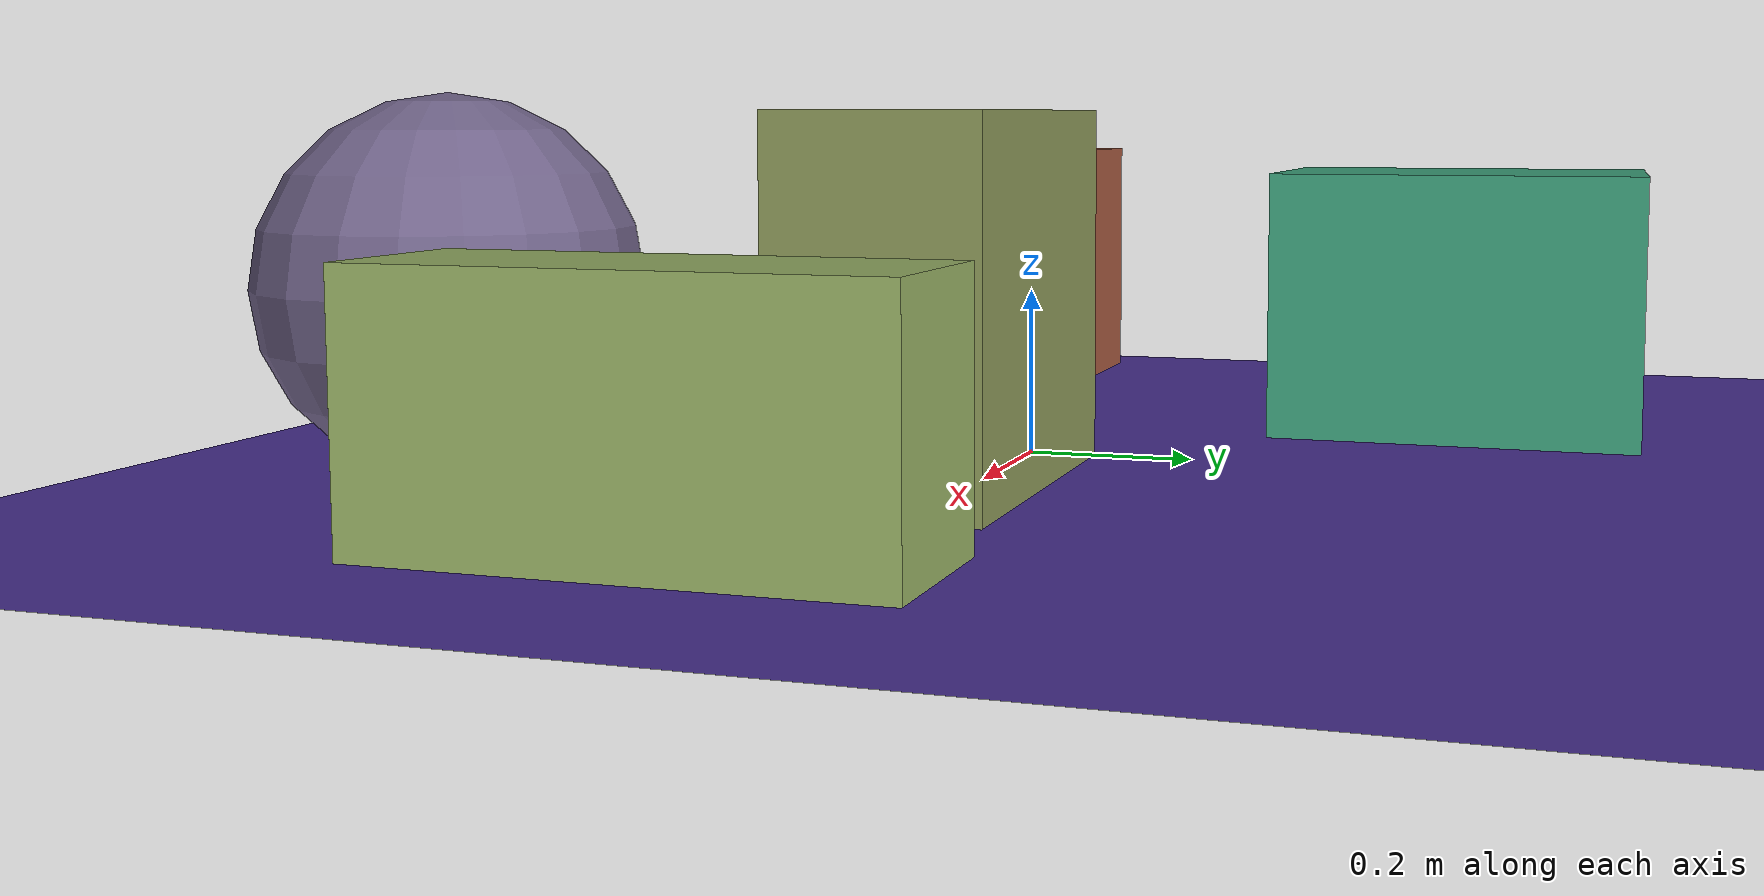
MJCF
<mujoco>
   <asset>
<texture type="skybox" builtin="gradient" rgb1="0.5 0.7 0.6" rgb2="0.7 0.0 1.0" width="256" height="256"/>
<texture name="gradient_0" builtin="gradient" rgb1="0.1 0.8 0.5" rgb2="0.4 0.5 0.5" width="200" height="200"/>
<texture name="gradient_1" builtin="gradient" rgb1="0.3 0.2 0.3" rgb2="1.0 0.5 0.2" width="200" height="200"/>
<texture name="gradient_2" builtin="gradient" rgb1="0.4 0.8 0.6" rgb2="0.7 0.4 0.1" width="200" height="200"/>
<texture name="checker_3" builtin="checker" type="2d" rgb1="0.3 0.2 0.1" rgb2="0.6 0.6 1.0" width="200" height="200"/>
<texture name="flat_4" builtin="flat" rgb1="0.6 0.7 0.4" rgb2="0.6 0.7 0.4"  width="200" height="200"/><material name="gradient_0_mat" reflectance="0" texture="gradient_0" texuniform="true"/>
<material name="gradient_1_mat" reflectance="0" texture="gradient_1" texuniform="true"/>
<material name="gradient_2_mat" reflectance="0" texture="gradient_2" texuniform="true"/>
<material name="checker_3_mat" reflectance="0" texrepeat="2 2" texture="checker_3" texuniform="false" />
<material name="flat_4_mat" reflectance="0" texture="flat_4" texuniform="true"/>
   </asset>

   <worldbody>
      <light diffuse=".9 .9 .9" pos="0 0 3" dir="0 0 -1"/>
     <geom type="plane" size="1 1 0.1" rgba="0.3 0.2 0.6 1"/>
<geom type="box" pos="-0.36 0.49 0.17" size="0.17 0.23 0.17" material="gradient_0_mat" />
<geom type="box" pos="-0.71 -0.28 0.18" size="0.18 0.18 0.18" material="gradient_1_mat" />
<geom type="box" pos="0.23 -0.04 0.21" size="0.23 0.12 0.21" material="gradient_2_mat" />
<geom type="sphere" pos="0.35 -0.59 0.22" size="0.22 0.22 0.22" material="checker_3_mat" />
<geom type="box" pos="0.68 -0.17 0.14" size="0.1 0.28 0.14" material="flat_4_mat" /><camera euler="60 0 180" fovy="60" name="camera_a" pos="0 -1.5 1"></camera>   </worldbody>
</mujoco>
